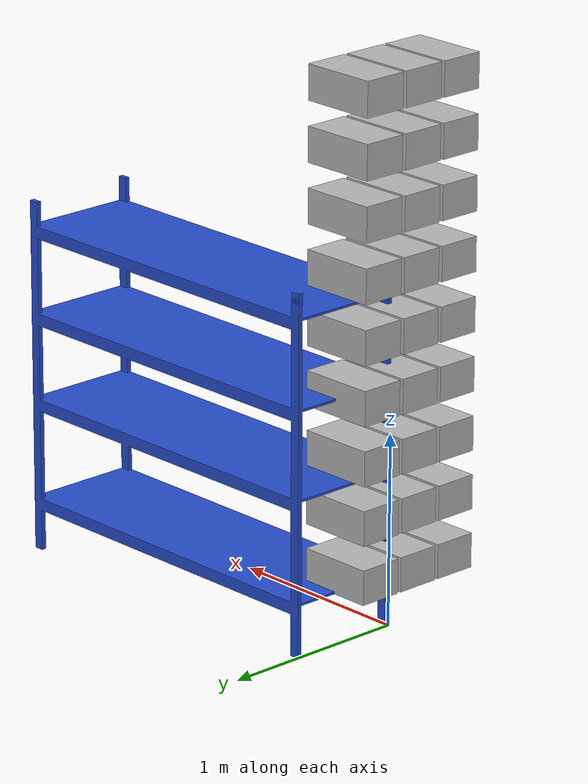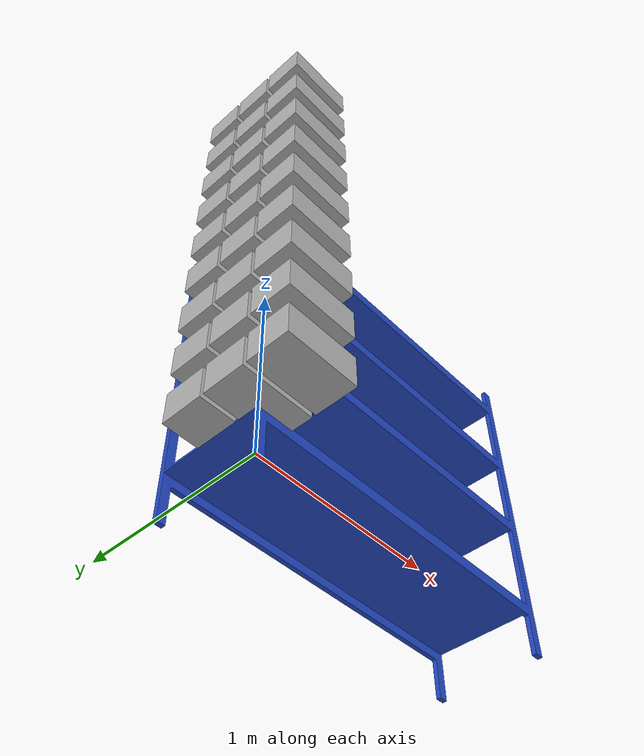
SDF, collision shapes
<?xml version="1.0" encoding="utf-8"?>
<sdf version='1.7'>
  <model name='rack_full'>
    <static>false</static>
    <self_collide>true</self_collide>
    <allow_auto_disable>true</allow_auto_disable>

    <model name='rack'>
      <link name='base_link'>
        <inertial>
          <pose>-4e-06 1e-06 1.6034 0 -0 0</pose>
          <mass>19.597</mass>
          <inertia>
            <ixx>7.2818</ixx>
            <ixy>-5.5511e-17</ixy>
            <ixz>1.0989e-17</ixz>
            <iyy>6.6753</iyy>
            <iyz>2.1487e-17</iyz>
            <izz>1.1751</izz>
          </inertia>
        </inertial>
        <collision name='base_link_collision'>
          <pose>0 0 0 0 -0 0</pose>
          <geometry>
            <mesh>
              <scale>1 1 1</scale>
              <uri>model://rack/meshes/base_link.STL</uri>
            </mesh>
          </geometry>
        </collision>
        <visual name='base_link_visual'>
          <pose>0 0 0 0 -0 0</pose>
          <geometry>
            <mesh>
              <scale>1 1 1</scale>
              <uri>model://rack/meshes/base_link.STL</uri>
            </mesh>
          </geometry>
          <material>
            <script>
              <name>Gazebo/Blue</name>
              <uri>file://media/materials/scripts/gazebo.material</uri>
            </script>
          </material>
        </visual>
      </link>
    </model>

    <include>
      <uri>model://small_box</uri>
      <name>box_1_1</name>
      <pose>0 -0.25 0.356799 0 0 0</pose>
    </include>
    <include>
      <uri>model://small_box</uri>
      <name>box_1_2</name>
      <pose>0 0 0.356799 0 0 0</pose>
    </include>
    <include>
      <uri>model://small_box</uri>
      <name>box_1_3</name>
      <pose>0 0.25 0.356799 0 0 0</pose>
    </include>

    <include>
      <uri>model://small_box</uri>
      <name>box_2_1</name>
      <pose>0 -0.25 0.661600 0 0 0</pose>
    </include>
    <include>
      <uri>model://small_box</uri>
      <name>box_2_2</name>
      <pose>0 0 0.661600 0 0 0</pose>
    </include>
    <include>
      <uri>model://small_box</uri>
      <name>box_2_3</name>
      <pose>0 0.25 0.661600 0 0 0</pose>
    </include>

    <include>
      <uri>model://small_box</uri>
      <name>box_3_1</name>
      <pose>0 -0.25 0.966400 0 0 0</pose>
    </include>
    <include>
      <uri>model://small_box</uri>
      <name>box_3_2</name>
      <pose>0 0 0.966400 0 0 0</pose>
    </include>
    <include>
      <uri>model://small_box</uri>
      <name>box_3_3</name>
      <pose>0 0.25 0.966400 0 0 0</pose>
    </include>

    <include>
      <uri>model://small_box</uri>
      <name>box_4_1</name>
      <pose>0 -0.25 1.271199 0 0 0</pose>
    </include>
    <include>
      <uri>model://small_box</uri>
      <name>box_4_2</name>
      <pose>0 0 1.271199 0 0 0</pose>
    </include>
    <include>
      <uri>model://small_box</uri>
      <name>box_4_3</name>
      <pose>0 0.25 1.271199 0 0 0</pose>
    </include>

    <include>
      <uri>model://small_box</uri>
      <name>box_5_1</name>
      <pose>0 -0.25 1.576000 0 0 0</pose>
    </include>
    <include>
      <uri>model://small_box</uri>
      <name>box_5_2</name>
      <pose>0 0 1.576000 0 0 0</pose>
    </include>
    <include>
      <uri>model://small_box</uri>
      <name>box_5_3</name>
      <pose>0 0.25 1.576000 0 0 0</pose>
    </include>

    <include>
      <uri>model://small_box</uri>
      <name>box_6_1</name>
      <pose>0 -0.25 1.880800 0 0 0</pose>
    </include>
    <include>
      <uri>model://small_box</uri>
      <name>box_6_2</name>
      <pose>0 0 1.880800 0 0 0</pose>
    </include>
    <include>
      <uri>model://small_box</uri>
      <name>box_6_3</name>
      <pose>0 0.25 1.880800 0 0 0</pose>
    </include>

    <include>
      <uri>model://small_box</uri>
      <name>box_7_1</name>
      <pose>0 -0.25 2.185598 0 0 0</pose>
    </include>
    <include>
      <uri>model://small_box</uri>
      <name>box_7_2</name>
      <pose>0 0 2.185598 0 0 0</pose>
    </include>
    <include>
      <uri>model://small_box</uri>
      <name>box_7_3</name>
      <pose>0 0.25 2.185598 0 0 0</pose>
    </include>

    <include>
      <uri>model://small_box</uri>
      <name>box_8_1</name>
      <pose>0 -0.25 2.490394 0 0 0</pose>
    </include>
    <include>
      <uri>model://small_box</uri>
      <name>box_8_2</name>
      <pose>0 0 2.490394 0 0 0</pose>
    </include>
    <include>
      <uri>model://small_box</uri>
      <name>box_8_3</name>
      <pose>0 0.25 2.490394 0 0 0</pose>
    </include>

    <include>
      <uri>model://small_box</uri>
      <name>box_9_1</name>
      <pose>0 -0.25 2.795200 0 0 0</pose>
    </include>
    <include>
      <uri>model://small_box</uri>
      <name>box_9_2</name>
      <pose>0 0 2.795200 0 0 0</pose>
    </include>
    <include>
      <uri>model://small_box</uri>
      <name>box_9_3</name>
      <pose>0 0.25 2.795200 0 0 0</pose>
    </include>
  </model>
</sdf>

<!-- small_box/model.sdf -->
<sdf version="1.5">
  <model name="small box">
    <pose>0 0 0.09  0 0 0</pose>
    <static>false</static>
    <link name="link">
      <inertial>
        <mass>2.0</mass>
        <inertia>
          <ixx>0.0008611666666666669</ixx>
          <ixy>0</ixy>
          <ixz>0</ixz>
          <iyy>0.0008611666666666669</iyy>
          <iyz>0</iyz>
          <izz>0.0008611666666666669</izz>
        </inertia>
      </inertial>

      <collision name="collision">
        <geometry>
          <box>
              <size>0.40 0.23 0.18</size>
          </box>
        </geometry>
	<surface>
          <contact>
            <ode>
              <max_vel>0.1</max_vel>
              <min_depth>0.001</min_depth>
            </ode>
          </contact>
        </surface>
      </collision>
      <visual name="visual">
        <geometry>
          <mesh>
            <uri>model://../model_source/models/small_box/meshes/small_box.dae</uri>
          </mesh>
	</geometry>
      </visual>
    </link>
  </model>
</sdf>
